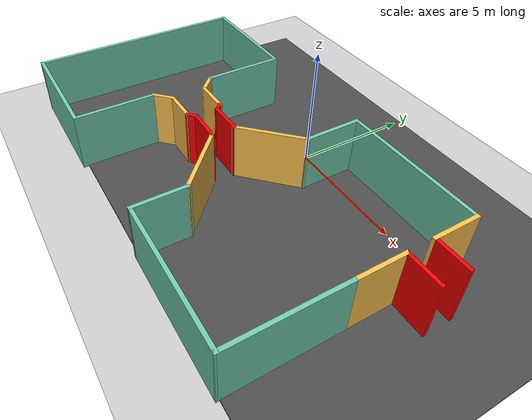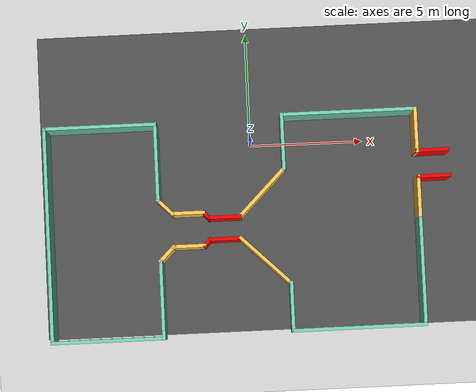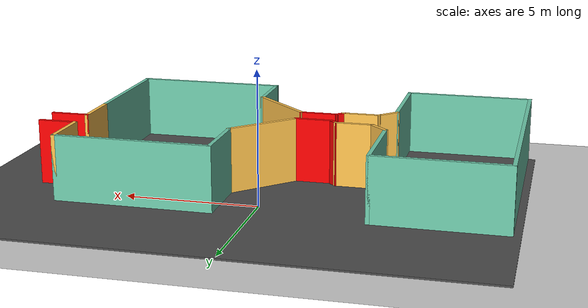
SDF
<sdf version="1.6">
 <world name="default">
  <light name="sun" type="directional">
   <pose>0 0 10 0 -0 0</pose>
   <diffuse>0.8 0.8 0.8 1</diffuse>
   <specular>0.2 0.2 0.2 1</specular>
   <attenuation>
    <range>1000</range>
    <constant>0.9</constant>
    <linear>0.01</linear>
    <quadratic>0.001</quadratic>
   </attenuation>
   <direction>-0.5 0.1 -0.9</direction>
  </light>
  <model name="ground_plane">
   <static>1</static>
   <link name="link">
    <collision name="collision">
     <geometry><plane><normal>0 0 1</normal><size>100 100</size></plane></geometry>
     <surface>
      <contact><collide_bitmask>65535</collide_bitmask></contact>
      <friction><ode><mu>100</mu><mu2>50</mu2></ode></friction>
     </surface>
    </collision>
    <visual name="visual">
     <cast_shadows>0</cast_shadows>
     <geometry><plane><normal>0 0 1</normal><size>100 100</size></plane></geometry>
     <material>
      <script><uri>file://media/materials/scripts/gazebo.material</uri><name>Gazebo/Grey</name></script>
     </material>
    </visual>
   </link>
  </model>
  <gravity>0 0 -9.8</gravity>
  <magnetic_field>6e-06 2.3e-05 -4.2e-05</magnetic_field>
  <atmosphere type="adiabatic"/>
  <physics name="default_physics" default="0" type="ode">
   <max_step_size>0.001</max_step_size>
   <real_time_factor>1</real_time_factor>
   <real_time_update_rate>1000</real_time_update_rate>
  </physics>
  <scene><ambient>0.4 0.4 0.4 1</ambient><background>0.7 0.7 0.7 1</background><shadows>1</shadows></scene>
  <spherical_coordinates>
   <surface_model>EARTH_WGS84</surface_model>
   <latitude_deg>0</latitude_deg>
   <longitude_deg>0</longitude_deg>
   <elevation>0</elevation>
   <heading_deg>0</heading_deg>
  </spherical_coordinates>
  <model name="asphalt_plane">
   <static>1</static>
   <link name="link">
    <collision name="collision"><geometry><box><size>47.6551 13.5167 0.0932763</size></box></geometry></collision>
    <visual name="visual">
     <cast_shadows>0</cast_shadows>
     <geometry><box><size>47.6551 13.5167 0.0932763</size></box></geometry>
     <material>
      <script>
       <uri>model://asphalt_plane/materials/scripts</uri>
       <uri>model://asphalt_plane/materials/textures</uri>
       <name>vrc/asphalt</name>
      </script>
     </material>
    </visual>
   </link>
   <pose>14.4861 -1.4794 0 0 -0 0</pose>
  </model>
  <model name="training_model_1">
   <pose>-0.184775 -3.61671 0 0 -0 0</pose>
   <link name="Wall_142">
    <collision name="Wall_142_Collision">
     <geometry><box><size>9.5 0.15 2.5</size></box></geometry>
     <pose>0 0 1.25 0 -0 0</pose>
    </collision>
    <visual name="Wall_142_Visual">
     <pose>0 0 1.25 0 -0 0</pose>
     <geometry><box><size>9.5 0.15 2.5</size></box></geometry>
     <material>
      <script><uri>file://media/materials/scripts/gazebo.material</uri><name>Gazebo/Grey</name></script>
      <ambient>0.435294 0.796078 0.67451 1</ambient>
     </material>
     <meta><layer>0</layer></meta>
    </visual>
    <pose>-8.80689 -0.083363 0 0 0 -1.5708</pose>
   </link>
   <link name="Wall_143">
    <collision name="Wall_143_Collision">
     <geometry><box><size>5 0.15 2.5</size></box></geometry>
     <pose>0 0 1.25 0 -0 0</pose>
    </collision>
    <visual name="Wall_143_Visual">
     <pose>0 0 1.25 0 -0 0</pose>
     <geometry><box><size>5 0.15 2.5</size></box></geometry>
     <material>
      <script><uri>file://media/materials/scripts/gazebo.material</uri><name>Gazebo/Grey</name></script>
      <ambient>0.435294 0.796078 0.67451 1</ambient>
     </material>
     <meta><layer>0</layer></meta>
    </visual>
    <pose>-6.38189 -4.75836 0 0 -0 0</pose>
   </link>
   <link name="Wall_144">
    <collision name="Wall_144_Collision">
     <geometry><box><size>3.5 0.15 2.5</size></box></geometry>
     <pose>0 0 1.25 0 -0 0</pose>
    </collision>
    <visual name="Wall_144_Visual">
     <pose>0 0 1.25 0 -0 0</pose>
     <geometry><box><size>3.5 0.15 2.5</size></box></geometry>
     <material>
      <script><uri>file://media/materials/scripts/gazebo.material</uri><name>Gazebo/Grey</name></script>
      <ambient>0.435294 0.796078 0.67451 1</ambient>
     </material>
     <meta><layer>0</layer></meta>
    </visual>
    <pose>-3.95689 -3.08336 0 0 -0 1.5708</pose>
   </link>
   <link name="Wall_145">
    <collision name="Wall_145_Collision">
     <geometry><box><size>1 0.15 2.5</size></box></geometry>
     <pose>0 0 1.25 0 -0 0</pose>
    </collision>
    <visual name="Wall_145_Visual">
     <pose>0 0 1.25 0 -0 0</pose>
     <geometry><box><size>1 0.15 2.5</size></box></geometry>
     <material>
      <script><uri>file://media/materials/scripts/gazebo.material</uri><name>Gazebo/Grey</name></script>
      <ambient>1 0.764706 0.305882 1</ambient>
     </material>
     <meta><layer>0</layer></meta>
    </visual>
    <pose>-3.65637 -1.10784 0 0 -0 0.785398</pose>
   </link>
   <link name="Wall_146">
    <collision name="Wall_146_Collision">
     <geometry><box><size>1.5 0.15 2.5</size></box></geometry>
     <pose>0 0 1.25 0 -0 0</pose>
    </collision>
    <visual name="Wall_146_Visual">
     <pose>0 0 1.25 0 -0 0</pose>
     <geometry><box><size>1.5 0.15 2.5</size></box></geometry>
     <material>
      <script><uri>file://media/materials/scripts/gazebo.material</uri><name>Gazebo/Grey</name></script>
      <ambient>1 0.764706 0.305882 1</ambient>
     </material>
     <meta><layer>0</layer></meta>
    </visual>
    <pose>-2.68085 -0.807322 0 0 -0 0</pose>
   </link>
   <link name="Wall_147">
    <collision name="Wall_147_Collision">
     <geometry><box><size>0.5 0.15 2.5</size></box></geometry>
     <pose>0 0 1.25 0 -0 0</pose>
    </collision>
    <visual name="Wall_147_Visual">
     <pose>0 0 1.25 0 -0 0</pose>
     <geometry><box><size>0.5 0.15 2.5</size></box></geometry>
     <material>
      <script><uri>file://media/materials/scripts/gazebo.material</uri><name>Gazebo/Grey</name></script>
      <ambient>1 0 0 1</ambient>
     </material>
     <meta><layer>0</layer></meta>
    </visual>
    <pose>-1.88211 -0.683578 0 0 -0 0.785398</pose>
   </link>
   <link name="Wall_148">
    <collision name="Wall_148_Collision">
     <geometry><box><size>1.5 0.15 2.5</size></box></geometry>
     <pose>0 0 1.25 0 -0 0</pose>
    </collision>
    <visual name="Wall_148_Visual">
     <pose>0 0 1.25 0 -0 0</pose>
     <geometry><box><size>1.5 0.15 2.5</size></box></geometry>
     <material>
      <script><uri>file://media/materials/scripts/gazebo.material</uri><name>Gazebo/Grey</name></script>
      <ambient>1 0 0 1</ambient>
     </material>
     <meta><layer>0</layer></meta>
    </visual>
    <pose>-1.08336 -0.559834 0 0 -0 0</pose>
   </link>
   <link name="Wall_149">
    <collision name="Wall_149_Collision">
     <geometry><box><size>3.09228 0.15 2.5</size></box></geometry>
     <pose>0 0 1.25 0 -0 0</pose>
    </collision>
    <visual name="Wall_149_Visual">
     <pose>0 0 1.25 0 -0 0</pose>
     <geometry><box><size>3.09228 0.15 2.5</size></box></geometry>
     <material>
      <script><uri>file://media/materials/scripts/gazebo.material</uri><name>Gazebo/Grey</name></script>
      <ambient>1 0.764706 0.305882 1</ambient>
     </material>
     <meta><layer>0</layer></meta>
    </visual>
    <pose>0.644747 -1.58707 0 0 0 -0.772961</pose>
   </link>
   <link name="Wall_150">
    <collision name="Wall_150_Collision">
     <geometry><box><size>2.25 0.15 2.5</size></box></geometry>
     <pose>0 0 1.25 0 -0 0</pose>
    </collision>
    <visual name="Wall_150_Visual">
     <pose>0 0 1.25 0 -0 0</pose>
     <geometry><box><size>2.25 0.15 2.5</size></box></geometry>
     <material>
      <script><uri>file://media/materials/scripts/gazebo.material</uri><name>Gazebo/Grey</name></script>
      <ambient>0.435294 0.796078 0.67451 1</ambient>
     </material>
     <meta><layer>0</layer></meta>
    </visual>
    <pose>1.69786 -3.64156 0 0 0 -1.5708</pose>
   </link>
   <link name="Wall_151">
    <collision name="Wall_151_Collision">
     <geometry><box><size>5.90906 0.15 2.5</size></box></geometry>
     <pose>0 0 1.25 0 -0 0</pose>
    </collision>
    <visual name="Wall_151_Visual">
     <pose>0 0 1.25 0 -0 0</pose>
     <geometry><box><size>5.90906 0.15 2.5</size></box></geometry>
     <material>
      <script><uri>file://media/materials/scripts/gazebo.material</uri><name>Gazebo/Grey</name></script>
      <ambient>0.435294 0.796078 0.67451 1</ambient>
     </material>
     <meta><layer>0</layer></meta>
    </visual>
    <pose>4.57737 -4.68333 0 0 -0 0.00286</pose>
   </link>
   <link name="Wall_152">
    <collision name="Wall_152_Collision">
     <geometry><box><size>4.75 0.15 2.5</size></box></geometry>
     <pose>0 0 1.25 0 -0 0</pose>
    </collision>
    <visual name="Wall_152_Visual">
     <pose>0 0 1.25 0 -0 0</pose>
     <geometry><box><size>4.75 0.15 2.5</size></box></geometry>
     <material>
      <script><uri>file://media/materials/scripts/gazebo.material</uri><name>Gazebo/Grey</name></script>
      <ambient>0.435294 0.796078 0.67451 1</ambient>
     </material>
     <meta><layer>0</layer></meta>
    </visual>
    <pose>7.45689 -2.37509 0 0 -0 1.5708</pose>
   </link>
   <link name="Wall_153">
    <collision name="Wall_153_Collision">
     <geometry><box><size>2 0.15 2.5</size></box></geometry>
     <pose>0 0 1.25 0 -0 0</pose>
    </collision>
    <visual name="Wall_153_Visual">
     <pose>0 0 1.25 0 -0 0</pose>
     <geometry><box><size>2 0.15 2.5</size></box></geometry>
     <material>
      <script><uri>file://media/materials/scripts/gazebo.material</uri><name>Gazebo/Grey</name></script>
      <ambient>1 0.764706 0.305882 1</ambient>
     </material>
     <meta><layer>0</layer></meta>
    </visual>
    <pose>7.45689 0.849911 0 0 -0 1.5708</pose>
   </link>
   <link name="Wall_154">
    <collision name="Wall_154_Collision">
     <geometry><box><size>1.5 0.15 2.5</size></box></geometry>
     <pose>0 0 1.25 0 -0 0</pose>
    </collision>
    <visual name="Wall_154_Visual">
     <pose>0 0 1.25 0 -0 0</pose>
     <geometry><box><size>1.5 0.15 2.5</size></box></geometry>
     <material>
      <script><uri>file://media/materials/scripts/gazebo.material</uri><name>Gazebo/Grey</name></script>
      <ambient>1 0 0 1</ambient>
     </material>
     <meta><layer>0</layer></meta>
    </visual>
    <pose>8.13189 1.77491 0 0 -0 0</pose>
   </link>
   <link name="Wall_156">
    <collision name="Wall_156_Collision">
     <geometry><box><size>5 0.15 2.5</size></box></geometry>
     <pose>0 0 1.25 0 -0 0</pose>
    </collision>
    <visual name="Wall_156_Visual">
     <pose>0 0 1.25 0 -0 0</pose>
     <geometry><box><size>5 0.15 2.5</size></box></geometry>
     <material>
      <script><uri>file://media/materials/scripts/gazebo.material</uri><name>Gazebo/Grey</name></script>
      <ambient>0.435294 0.796078 0.67451 1</ambient>
     </material>
     <meta><layer>0</layer></meta>
    </visual>
    <pose>-6.38189 4.59164 0 0 -0 0</pose>
   </link>
   <link name="Wall_159">
    <collision name="Wall_159_Collision">
     <geometry><box><size>3.5 0.15 2.5</size></box></geometry>
     <pose>0 0 1.25 0 -0 0</pose>
    </collision>
    <visual name="Wall_159_Visual">
     <pose>0 0 1.25 0 -0 0</pose>
     <geometry><box><size>3.5 0.15 2.5</size></box></geometry>
     <material>
      <script><uri>file://media/materials/scripts/gazebo.material</uri><name>Gazebo/Grey</name></script>
      <ambient>0.435294 0.796078 0.67451 1</ambient>
     </material>
     <meta><layer>0</layer></meta>
    </visual>
    <pose>-3.95689 2.91664 0 0 0 -1.5708</pose>
   </link>
   <link name="Wall_160">
    <collision name="Wall_160_Collision">
     <geometry><box><size>1 0.15 2.5</size></box></geometry>
     <pose>0 0 1.25 0 -0 0</pose>
    </collision>
    <visual name="Wall_160_Visual">
     <pose>0 0 1.25 0 -0 0</pose>
     <geometry><box><size>1 0.15 2.5</size></box></geometry>
     <material>
      <script><uri>file://media/materials/scripts/gazebo.material</uri><name>Gazebo/Grey</name></script>
      <ambient>1 0.764706 0.305882 1</ambient>
     </material>
     <meta><layer>0</layer></meta>
    </visual>
    <pose>-3.65637 0.941117 0 0 0 -0.785398</pose>
   </link>
   <link name="Wall_161">
    <collision name="Wall_161_Collision">
     <geometry><box><size>1.5 0.15 2.5</size></box></geometry>
     <pose>0 0 1.25 0 -0 0</pose>
    </collision>
    <visual name="Wall_161_Visual">
     <pose>0 0 1.25 0 -0 0</pose>
     <geometry><box><size>1.5 0.15 2.5</size></box></geometry>
     <material>
      <script><uri>file://media/materials/scripts/gazebo.material</uri><name>Gazebo/Grey</name></script>
      <ambient>1 0.764706 0.305882 1</ambient>
     </material>
     <meta><layer>0</layer></meta>
    </visual>
    <pose>-2.68085 0.640596 0 0 -0 0</pose>
   </link>
   <link name="Wall_162">
    <collision name="Wall_162_Collision">
     <geometry><box><size>0.5 0.15 2.5</size></box></geometry>
     <pose>0 0 1.25 0 -0 0</pose>
    </collision>
    <visual name="Wall_162_Visual">
     <pose>0 0 1.25 0 -0 0</pose>
     <geometry><box><size>0.5 0.15 2.5</size></box></geometry>
     <material>
      <script><uri>file://media/materials/scripts/gazebo.material</uri><name>Gazebo/Grey</name></script>
      <ambient>1 0 0 1</ambient>
     </material>
     <meta><layer>0</layer></meta>
    </visual>
    <pose>-1.88211 0.516853 0 0 0 -0.785398</pose>
   </link>
   <link name="Wall_163">
    <collision name="Wall_163_Collision">
     <geometry><box><size>1.5 0.15 2.5</size></box></geometry>
     <pose>0 0 1.25 0 -0 0</pose>
    </collision>
    <visual name="Wall_163_Visual">
     <pose>0 0 1.25 0 -0 0</pose>
     <geometry><box><size>1.5 0.15 2.5</size></box></geometry>
     <material>
      <script><uri>file://media/materials/scripts/gazebo.material</uri><name>Gazebo/Grey</name></script>
      <ambient>1 0 0 1</ambient>
     </material>
     <meta><layer>0</layer></meta>
    </visual>
    <pose>-1.08336 0.393109 0 0 -0 0</pose>
   </link>
   <link name="Wall_164">
    <collision name="Wall_164_Collision">
     <geometry><box><size>3 0.15 2.5</size></box></geometry>
     <pose>0 0 1.25 0 -0 0</pose>
    </collision>
    <visual name="Wall_164_Visual">
     <pose>0 0 1.25 0 -0 0</pose>
     <geometry><box><size>3 0.15 2.5</size></box></geometry>
     <material>
      <script><uri>file://media/materials/scripts/gazebo.material</uri><name>Gazebo/Grey</name></script>
      <ambient>1 0.764706 0.305882 1</ambient>
     </material>
     <meta><layer>0</layer></meta>
    </visual>
    <pose>0.599265 1.40074 0 0 -0 0.785398</pose>
   </link>
   <link name="Wall_165">
    <collision name="Wall_165_Collision">
     <geometry><box><size>2.5 0.15 2.5</size></box></geometry>
     <pose>0 0 1.25 0 -0 0</pose>
    </collision>
    <visual name="Wall_165_Visual">
     <pose>0 0 1.25 0 -0 0</pose>
     <geometry><box><size>2.5 0.15 2.5</size></box></geometry>
     <material>
      <script><uri>file://media/materials/scripts/gazebo.material</uri><name>Gazebo/Grey</name></script>
      <ambient>0.435294 0.796078 0.67451 1</ambient>
     </material>
     <meta><layer>0</layer></meta>
    </visual>
    <pose>1.60689 3.58336 0 0 -0 1.5708</pose>
   </link>
   <link name="Wall_167">
    <collision name="Wall_167_Collision">
     <geometry><box><size>6 0.15 2.5</size></box></geometry>
     <pose>0 0 1.25 0 -0 0</pose>
    </collision>
    <visual name="Wall_167_Visual">
     <pose>0 0 1.25 0 -0 0</pose>
     <geometry><box><size>6 0.15 2.5</size></box></geometry>
     <material>
      <script><uri>file://media/materials/scripts/gazebo.material</uri><name>Gazebo/Grey</name></script>
      <ambient>0.435294 0.796078 0.67451 1</ambient>
     </material>
     <meta><layer>0</layer></meta>
    </visual>
    <pose>4.53189 4.75836 0 0 -0 0</pose>
   </link>
   <link name="Wall_168">
    <collision name="Wall_168_Collision">
     <geometry><box><size>2 0.15 2.5</size></box></geometry>
     <pose>0 0 1.25 0 -0 0</pose>
    </collision>
    <visual name="Wall_168_Visual">
     <pose>0 0 1.25 0 -0 0</pose>
     <geometry><box><size>2 0.15 2.5</size></box></geometry>
     <material>
      <script><uri>file://media/materials/scripts/gazebo.material</uri><name>Gazebo/Grey</name></script>
      <ambient>1 0.764706 0.305882 1</ambient>
     </material>
     <meta><layer>0</layer></meta>
    </visual>
    <pose>7.45689 3.83336 0 0 0 -1.5708</pose>
   </link>
   <link name="Wall_169">
    <collision name="Wall_169_Collision">
     <geometry><box><size>1.5 0.15 2.5</size></box></geometry>
     <pose>0 0 1.25 0 -0 0</pose>
    </collision>
    <visual name="Wall_169_Visual">
     <pose>0 0 1.25 0 -0 0</pose>
     <geometry><box><size>1.5 0.15 2.5</size></box></geometry>
     <material>
      <script><uri>file://media/materials/scripts/gazebo.material</uri><name>Gazebo/Grey</name></script>
      <ambient>1 0 0 1</ambient>
     </material>
     <meta><layer>0</layer></meta>
    </visual>
    <pose>8.13189 2.90836 0 0 -0 0</pose>
   </link>
   <static>1</static>
  </model>
 </world>
</sdf>
